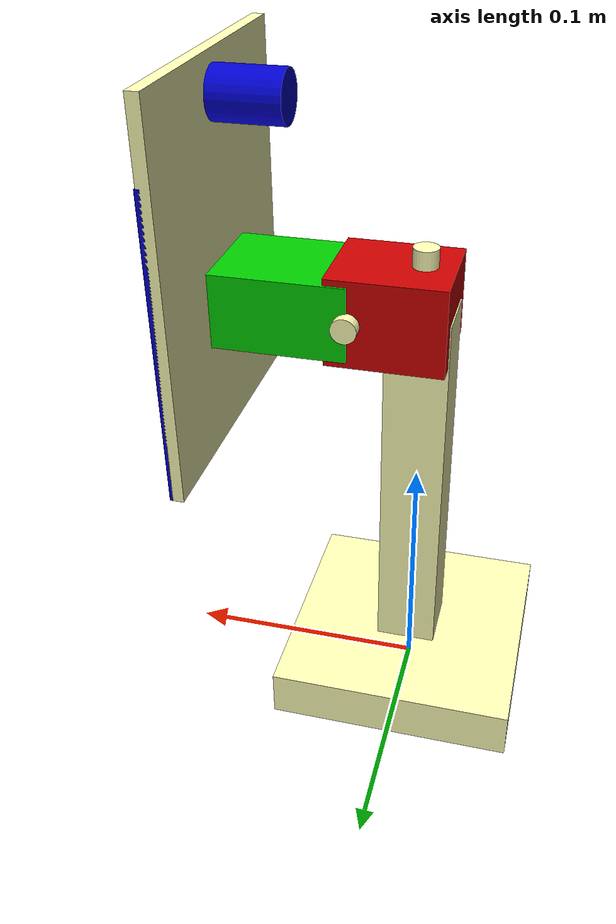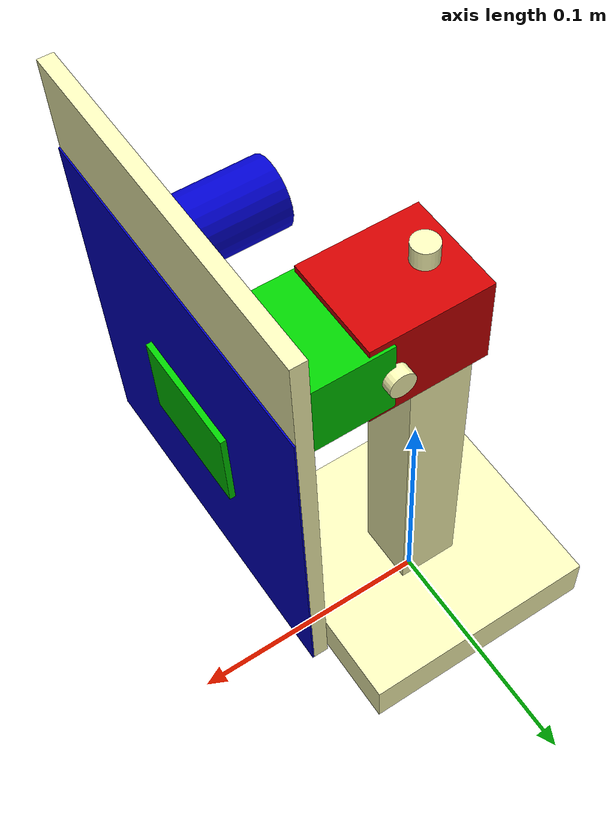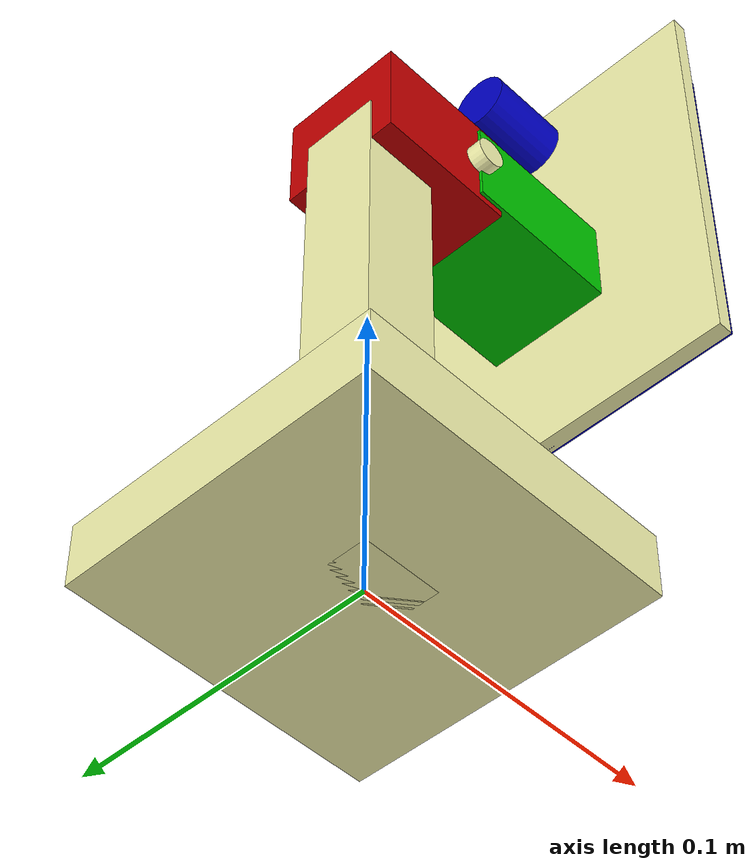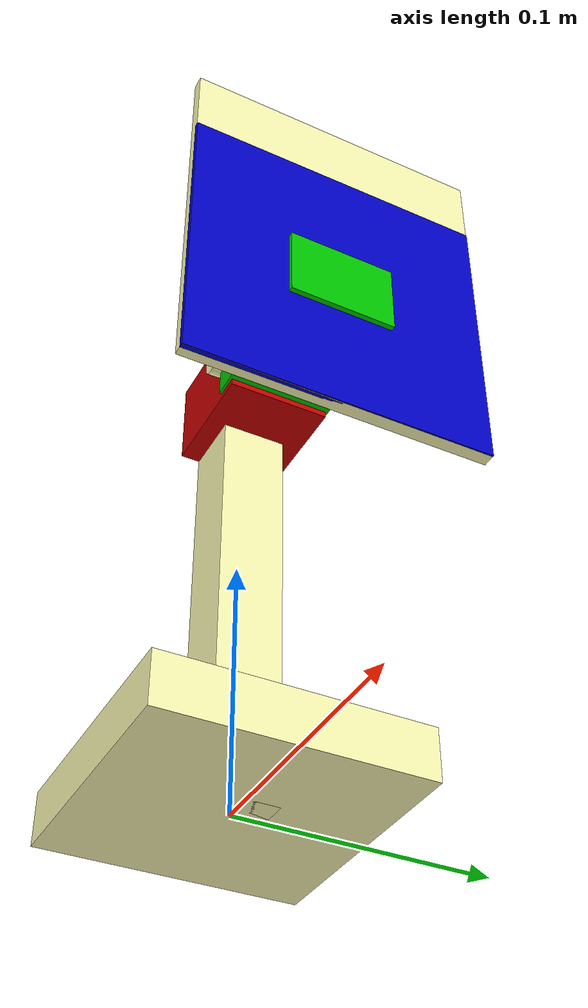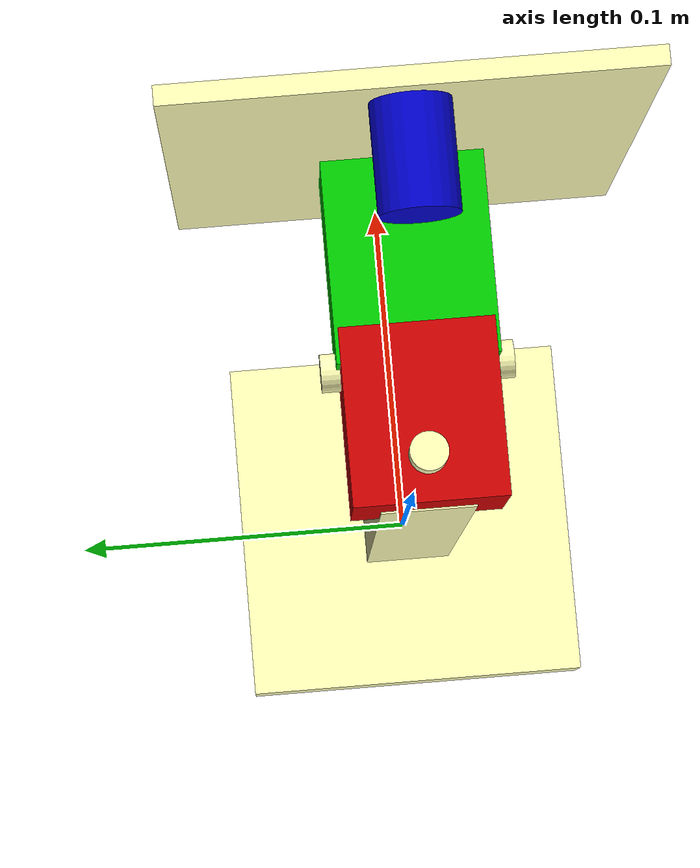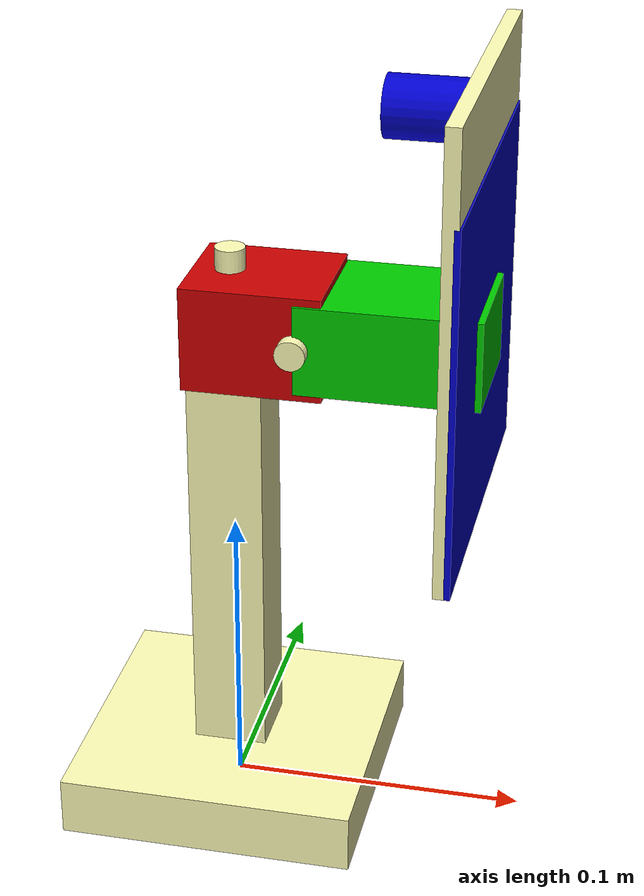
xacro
<?xml version="1.0"?>
<robot name="marker_mov" xmlns:xacro="http://ros.org/wiki/xacro">

  <material name="red">
    <color rgba="0.8 0 0 1"/>
  </material>

  <material name="green">
    <color rgba="0 0.8 0 1"/>
  </material>

  <material name="blue">
    <color rgba="0 0 0.8 1"/>
  </material>

  <material name="white">
    <color rgba="1.0 0.996078431372549 0.7137254901960784 1.0" />
  </material>

  <xacro:property name="rob_name" value="marker_mov" />

  <xacro:property name="cam_y_offset" value="0.075" />
  <xacro:property name="link0_x_offset" value="0.0" />
  <xacro:property name="link0_axis_z_length" value="0.175" />
  <xacro:property name="arm_base_length" value="0.1" />

  <link name="${rob_name}/arm_base">
    <visual>
      <origin xyz="0 0 0.01" rpy="0 0 0" />
      <geometry>
        <box size = "${arm_base_length} ${arm_base_length} 0.02" rpy = "0 0 0"/>
      </geometry>
      <material name="white"/>
    </visual>
  </link>

  <link name="${rob_name}/link0_axis">
    <visual>
      <origin xyz="0 0 ${link0_axis_z_length/2}" rpy="0 0 0" />
      <geometry>
        <box size = "0.025 0.025 ${link0_axis_z_length}" rpy = "0 0 0"/>
      </geometry>
      <material name="white"/>
    </visual>
  </link>

  <link name="${rob_name}/link0">
    <visual>
      <origin xyz="${link0_x_offset/2} 0 0" rpy="0 0 0" />
      <geometry>
        <box size = "${link0_x_offset/2} 0.04 ${link0_x_offset/2}" rpy = "0 0 0"/>
      </geometry>
      <material name="white"/>
    </visual>
  </link>

  <link name="${rob_name}/link1_axis">
    <visual>
      <geometry>
        <cylinder length="0.05" radius="0.005"/>
      </geometry>
      <material name="white"/>
    </visual>
  </link>

  <link name="${rob_name}/link1">
    <visual>
      <origin xyz="0.011 0 0" rpy="0 0 0" />
      <geometry>
        <box size = "0.046 0.04 0.035" rpy = "0 0 0"/>
      </geometry>
      <material name="red"/>
    </visual>
  </link>

  <link name="${rob_name}/link2_axis">
    <visual>
      <geometry>
        <cylinder length="0.05" radius="0.005"/>
      </geometry>
      <material name="white"/>
    </visual>
  </link>

  <link name="${rob_name}/link2">
    <visual>
      <origin xyz="0.03 0 0" rpy="0 0 0" />
      <geometry>
        <box size = "0.06 0.03 0.042" rpy = "0 0 0"/>
      </geometry>
      <material name="green"/>
    </visual>
  </link>

  <link name="${rob_name}/cam_base">
    <visual>
      <origin xyz="-0.015 0 0" rpy="0 ${pi/2} 0" />
      <geometry>
        <cylinder length="0.03" radius="0.01"/>
      </geometry>
      <material name="blue"/>
    </visual>
  </link>

  <link name="${rob_name}/cam_frame" >
    <visual>
      <origin xyz="0 0.06 0" rpy="0 0 0" />
      <geometry>
        <box size = "0.12 0.15 0.005" rpy = "0 0 0"/>
      </geometry>
      <material name="white"/>
    </visual>
  </link>

  <link name="${rob_name}/marker_frame" >
    <visual>
      <origin xyz="0 0 0.002" rpy="0 0 0" />
      <geometry>
        <box size = "0.12 0.12 0.002" rpy = "0 0 0"/>
      </geometry>
      <material name="blue"/>
    </visual>
  </link>

  <joint name="joint1" type="continuous">
    <parent link="${rob_name}/link1_axis" />
    <child link="${rob_name}/link1" />
    <axis xyz="0 0 1"/>
  </joint>

  <joint name="joint2_axis" type="fixed">
    <origin xyz="0.025 0 0" rpy="${pi/2} 0 0" />
    <parent link="${rob_name}/link1" />
    <child link="${rob_name}/link2_axis" />
    <axis xyz="0 0 1"/>
  </joint>

  <joint name="joint2" type="revolute">
    <limit effort="1000.0"  velocity="10.0" lower="${-pi/2}" upper="${pi/2}"/>
    <parent link="${rob_name}/link2_axis" />
    <child link="${rob_name}/link2" />
    <axis xyz="0 0 1"/>
  </joint>

  <joint name="joint_cam_base" type="fixed">
    <origin xyz="0.055 ${cam_y_offset} 0" rpy="${-pi/2} 0 0" />
    <parent link="${rob_name}/link2" />
    <child link="${rob_name}/cam_base" />
    <axis xyz="0 0 1"/>
  </joint>

  <joint name="joint_cam_frame" type="fixed">
    <origin xyz="0 0 0" rpy="${-pi/2} 0 ${-pi/2}" />
    <parent link="${rob_name}/cam_base" />
    <child link="${rob_name}/cam_frame" />
    <axis xyz="0 0 1"/>
  </joint>

  <joint name="joint_marker" type="fixed">
    <origin xyz="0.055 0 0" rpy="0 ${pi/2} 0" />
    <parent link="${rob_name}/link2" />
    <child link="${rob_name}/marker_frame" />
    <axis xyz="0 0 1"/>
  </joint>

  <joint name="arm_base_joint" type="fixed">
    <origin xyz="0 0 0" rpy="0 0 0" />
    <parent link="${rob_name}/arm_base" />
    <child link="${rob_name}/link0_axis" />
    <axis xyz="0 0 1"/>
  </joint>

  <joint name="link0_axis_joint" type="fixed">
    <origin xyz="0 0 ${link0_axis_z_length}" rpy="0 0 0" />
    <parent link="${rob_name}/link0_axis" />
    <child link="${rob_name}/link0" />
    <axis xyz="0 0 1"/>
  </joint>

  <joint name="joint0_axis" type="fixed">
    <origin xyz="${link0_x_offset} 0 0" rpy="0 0 0" />
    <parent link="${rob_name}/link0" />
    <child link="${rob_name}/link1_axis" />
    <axis xyz="0 0 1"/>
  </joint>

</robot>
